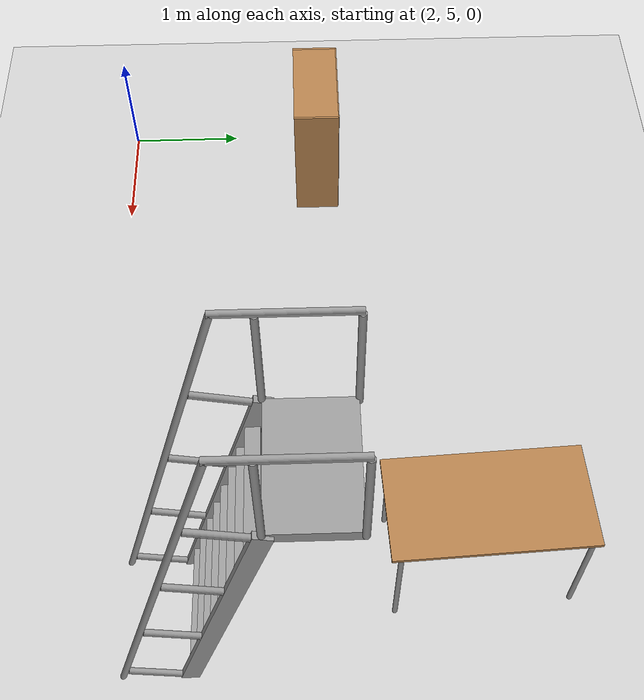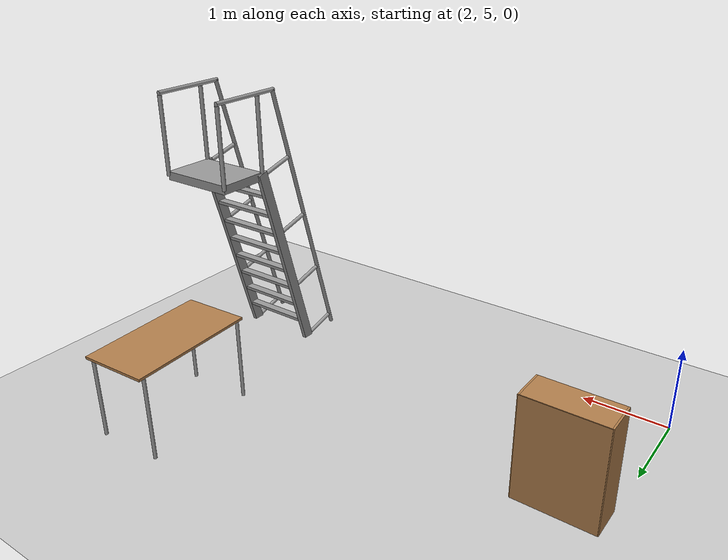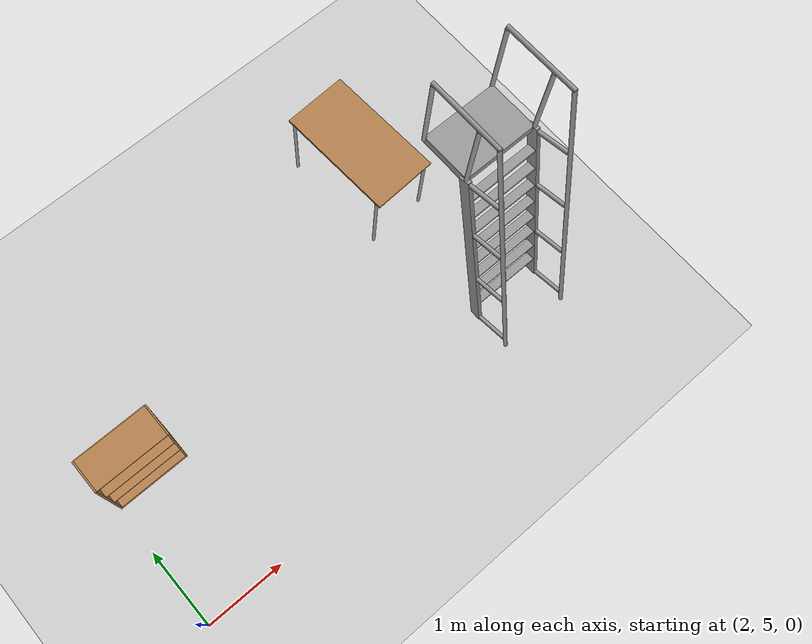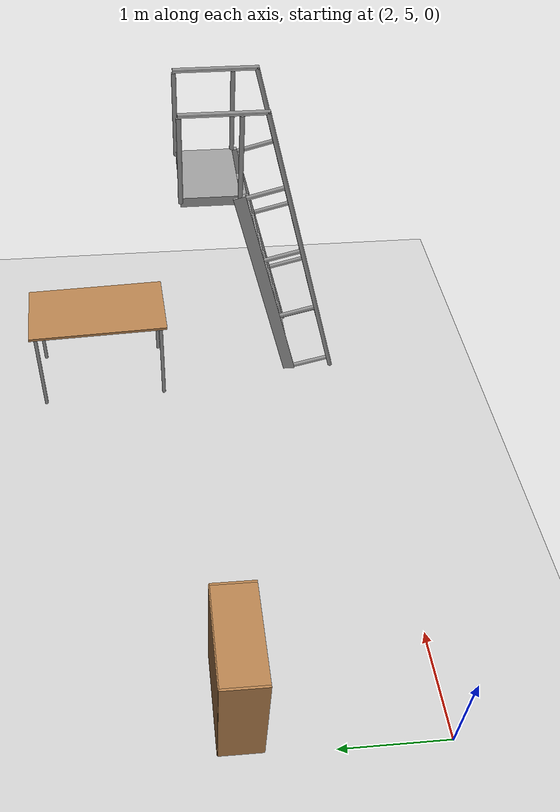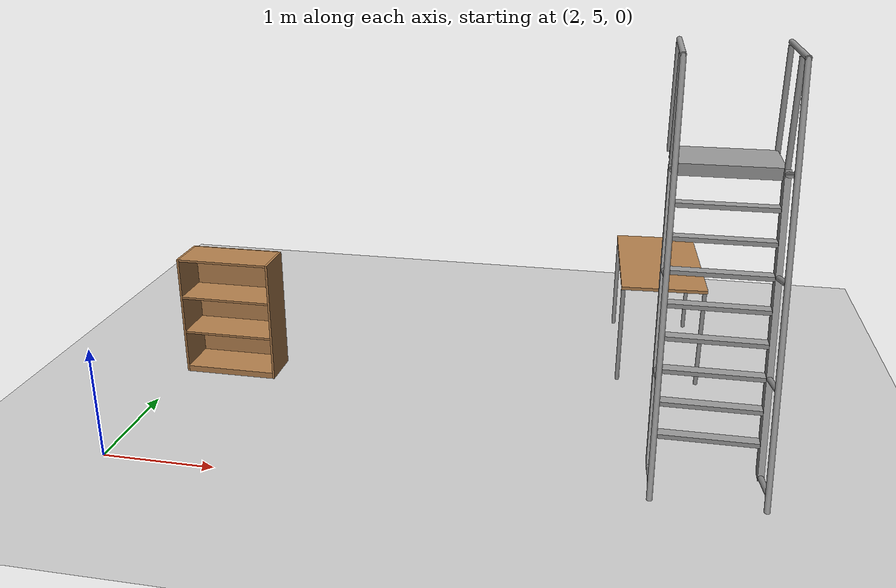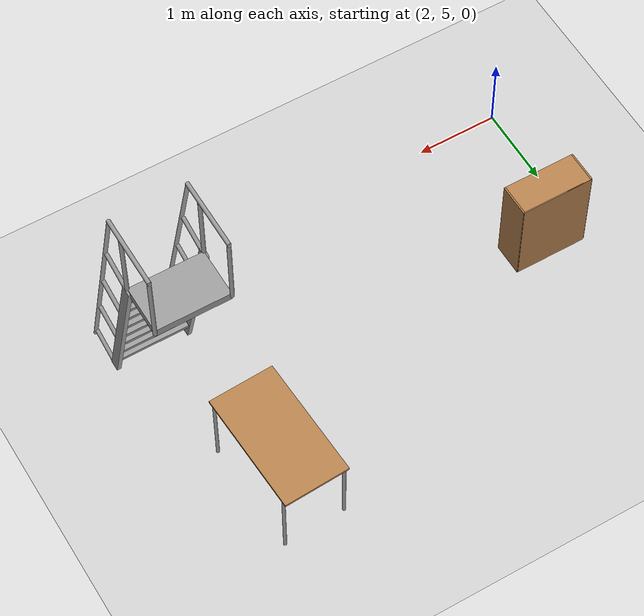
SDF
<sdf version="1.4">
 <world name="default">
  <model name="ground_plane">
   <static>1</static>
   <link name="link">
    <collision name="collision">
     <geometry><plane><normal>0 0 1</normal><size>100 100</size></plane></geometry>
     <surface><friction><ode><mu>100</mu><mu2>50</mu2></ode></friction></surface>
    </collision>
    <visual name="visual">
     <cast_shadows>0</cast_shadows>
     <geometry><plane><normal>0 0 1</normal><size>100 100</size></plane></geometry>
     <material>
      <script><uri>file://media/materials/scripts/gazebo.material</uri><name>Gazebo/Grey</name></script>
     </material>
    </visual>
    <velocity_decay><linear>0</linear><angular>0</angular></velocity_decay>
   </link>
  </model>
  <model name="ladder_75deg_2rails">
   <static>1</static>
   <link name="step0">
    <pose>0 0.0714531 0.266667 0 -0 0</pose>
    <inertial>
     <mass>9.75482</mass>
     <inertia>
      <ixx>0.00957124</ixx>
      <iyy>0.65963</iyy>
      <izz>0.666842</izz>
      <ixy>0</ixy>
      <ixz>0</ixz>
      <iyz>0</iyz>
     </inertia>
    </inertial>
    <collision name="collision"><geometry><box><size>0.9 0.1016 0.0381</size></box></geometry></collision>
    <visual name="visual">
     <geometry><box><size>0.9 0.1016 0.0381</size></box></geometry>
     <material>
      <script><uri>file://media/materials/scripts/gazebo.material</uri><name>Gazebo/Grey</name></script>
     </material>
    </visual>
    <velocity_decay><linear>0</linear><angular>0</angular></velocity_decay>
   </link>
   <link name="step1">
    <pose>0 0.142906 0.533333 0 -0 0</pose>
    <inertial>
     <mass>9.75482</mass>
     <inertia>
      <ixx>0.00957124</ixx>
      <iyy>0.65963</iyy>
      <izz>0.666842</izz>
      <ixy>0</ixy>
      <ixz>0</ixz>
      <iyz>0</iyz>
     </inertia>
    </inertial>
    <collision name="collision"><geometry><box><size>0.9 0.1016 0.0381</size></box></geometry></collision>
    <visual name="visual">
     <geometry><box><size>0.9 0.1016 0.0381</size></box></geometry>
     <material>
      <script><uri>file://media/materials/scripts/gazebo.material</uri><name>Gazebo/Grey</name></script>
     </material>
    </visual>
    <velocity_decay><linear>0</linear><angular>0</angular></velocity_decay>
   </link>
   <link name="step2">
    <pose>0 0.214359 0.8 0 -0 0</pose>
    <inertial>
     <mass>9.75482</mass>
     <inertia>
      <ixx>0.00957124</ixx>
      <iyy>0.65963</iyy>
      <izz>0.666842</izz>
      <ixy>0</ixy>
      <ixz>0</ixz>
      <iyz>0</iyz>
     </inertia>
    </inertial>
    <collision name="collision"><geometry><box><size>0.9 0.1016 0.0381</size></box></geometry></collision>
    <visual name="visual">
     <geometry><box><size>0.9 0.1016 0.0381</size></box></geometry>
     <material>
      <script><uri>file://media/materials/scripts/gazebo.material</uri><name>Gazebo/Grey</name></script>
     </material>
    </visual>
    <velocity_decay><linear>0</linear><angular>0</angular></velocity_decay>
   </link>
   <link name="step3">
    <pose>0 0.285812 1.06667 0 -0 0</pose>
    <inertial>
     <mass>9.75482</mass>
     <inertia>
      <ixx>0.00957124</ixx>
      <iyy>0.65963</iyy>
      <izz>0.666842</izz>
      <ixy>0</ixy>
      <ixz>0</ixz>
      <iyz>0</iyz>
     </inertia>
    </inertial>
    <collision name="collision"><geometry><box><size>0.9 0.1016 0.0381</size></box></geometry></collision>
    <visual name="visual">
     <geometry><box><size>0.9 0.1016 0.0381</size></box></geometry>
     <material>
      <script><uri>file://media/materials/scripts/gazebo.material</uri><name>Gazebo/Grey</name></script>
     </material>
    </visual>
    <velocity_decay><linear>0</linear><angular>0</angular></velocity_decay>
   </link>
   <link name="step4">
    <pose>0 0.357266 1.33333 0 -0 0</pose>
    <inertial>
     <mass>9.75482</mass>
     <inertia>
      <ixx>0.00957124</ixx>
      <iyy>0.65963</iyy>
      <izz>0.666842</izz>
      <ixy>0</ixy>
      <ixz>0</ixz>
      <iyz>0</iyz>
     </inertia>
    </inertial>
    <collision name="collision"><geometry><box><size>0.9 0.1016 0.0381</size></box></geometry></collision>
    <visual name="visual">
     <geometry><box><size>0.9 0.1016 0.0381</size></box></geometry>
     <material>
      <script><uri>file://media/materials/scripts/gazebo.material</uri><name>Gazebo/Grey</name></script>
     </material>
    </visual>
    <velocity_decay><linear>0</linear><angular>0</angular></velocity_decay>
   </link>
   <link name="step5">
    <pose>0 0.428719 1.6 0 -0 0</pose>
    <inertial>
     <mass>9.75482</mass>
     <inertia>
      <ixx>0.00957124</ixx>
      <iyy>0.65963</iyy>
      <izz>0.666842</izz>
      <ixy>0</ixy>
      <ixz>0</ixz>
      <iyz>0</iyz>
     </inertia>
    </inertial>
    <collision name="collision"><geometry><box><size>0.9 0.1016 0.0381</size></box></geometry></collision>
    <visual name="visual">
     <geometry><box><size>0.9 0.1016 0.0381</size></box></geometry>
     <material>
      <script><uri>file://media/materials/scripts/gazebo.material</uri><name>Gazebo/Grey</name></script>
     </material>
    </visual>
    <velocity_decay><linear>0</linear><angular>0</angular></velocity_decay>
   </link>
   <link name="step6">
    <pose>0 0.500172 1.86667 0 -0 0</pose>
    <inertial>
     <mass>9.75482</mass>
     <inertia>
      <ixx>0.00957124</ixx>
      <iyy>0.65963</iyy>
      <izz>0.666842</izz>
      <ixy>0</ixy>
      <ixz>0</ixz>
      <iyz>0</iyz>
     </inertia>
    </inertial>
    <collision name="collision"><geometry><box><size>0.9 0.1016 0.0381</size></box></geometry></collision>
    <visual name="visual">
     <geometry><box><size>0.9 0.1016 0.0381</size></box></geometry>
     <material>
      <script><uri>file://media/materials/scripts/gazebo.material</uri><name>Gazebo/Grey</name></script>
     </material>
    </visual>
    <velocity_decay><linear>0</linear><angular>0</angular></velocity_decay>
   </link>
   <link name="step7">
    <pose>0 0.571625 2.13333 0 -0 0</pose>
    <inertial>
     <mass>9.75482</mass>
     <inertia>
      <ixx>0.00957124</ixx>
      <iyy>0.65963</iyy>
      <izz>0.666842</izz>
      <ixy>0</ixy>
      <ixz>0</ixz>
      <iyz>0</iyz>
     </inertia>
    </inertial>
    <collision name="collision"><geometry><box><size>0.9 0.1016 0.0381</size></box></geometry></collision>
    <visual name="visual">
     <geometry><box><size>0.9 0.1016 0.0381</size></box></geometry>
     <material>
      <script><uri>file://media/materials/scripts/gazebo.material</uri><name>Gazebo/Grey</name></script>
     </material>
    </visual>
    <velocity_decay><linear>0</linear><angular>0</angular></velocity_decay>
   </link>
   <link name="landing">
    <pose>0 0.943078 2.4 0 -0 0</pose>
    <inertial>
     <mass>57.6072</mass>
     <inertia><ixx>1.73518</ixx><iyy>3.89545</iyy><izz>5.6167</izz><ixy>0</ixy><ixz>0</ixz><iyz>0</iyz></inertia>
    </inertial>
    <collision name="collision"><geometry><box><size>0.9 0.6 0.1016</size></box></geometry></collision>
    <visual name="visual">
     <geometry><box><size>0.9 0.6 0.1016</size></box></geometry>
     <material>
      <script><uri>file://media/materials/scripts/gazebo.material</uri><name>Gazebo/Grey</name></script>
     </material>
    </visual>
    <velocity_decay><linear>0</linear><angular>0</angular></velocity_decay>
   </link>
   <link name="left_side_wall">
    <pose>-0.45 0.321539 1.2 1.309 -0 0</pose>
    <collision name="collision"><geometry><box><size>0.0508 2.56466 0.13</size></box></geometry></collision>
    <visual name="visual">
     <geometry><box><size>0.0508 2.56466 0.13</size></box></geometry>
     <material>
      <script><uri>file://media/materials/scripts/gazebo.material</uri><name>Gazebo/Grey</name></script>
     </material>
    </visual>
    <velocity_decay><linear>0</linear><angular>0</angular></velocity_decay>
   </link>
   <link name="right_side_wall">
    <pose>0.45 0.321539 1.2 1.309 -0 0</pose>
    <collision name="collision"><geometry><box><size>0.0508 2.56466 0.13</size></box></geometry></collision>
    <visual name="visual">
     <geometry><box><size>0.0508 2.56466 0.13</size></box></geometry>
     <material>
      <script><uri>file://media/materials/scripts/gazebo.material</uri><name>Gazebo/Grey</name></script>
     </material>
    </visual>
    <velocity_decay><linear>0</linear><angular>0</angular></velocity_decay>
   </link>
   <link name="left_railing_long">
    <pose>-0.45 -0.053461 1.66651 -0.261799 0 0</pose>
    <collision name="collision">
     <geometry><cylinder><radius>0.02413</radius><length>3.51529</length></cylinder></geometry>
    </collision>
    <visual name="visual">
     <geometry><cylinder><radius>0.02413</radius><length>3.51529</length></cylinder></geometry>
     <material>
      <script><uri>file://media/materials/scripts/gazebo.material</uri><name>Gazebo/Grey</name></script>
     </material>
    </visual>
    <velocity_decay><linear>0</linear><angular>0</angular></velocity_decay>
   </link>
   <link name="left_railing_upright0">
    <pose>-0.45 -0.210089 0.0562931 1.309 -0 0</pose>
    <collision name="collision">
     <geometry><cylinder><radius>0.02413</radius><length>0.482963</length></cylinder></geometry>
    </collision>
    <visual name="visual">
     <geometry><cylinder><radius>0.02413</radius><length>0.482963</length></cylinder></geometry>
     <material>
      <script><uri>file://media/materials/scripts/gazebo.material</uri><name>Gazebo/Grey</name></script>
     </material>
    </visual>
    <velocity_decay><linear>0</linear><angular>0</angular></velocity_decay>
   </link>
   <link name="left_railing_upright1">
    <pose>-0.45 0.00427049 0.856293 1.309 -0 0</pose>
    <collision name="collision">
     <geometry><cylinder><radius>0.02413</radius><length>0.482963</length></cylinder></geometry>
    </collision>
    <visual name="visual">
     <geometry><cylinder><radius>0.02413</radius><length>0.482963</length></cylinder></geometry>
     <material>
      <script><uri>file://media/materials/scripts/gazebo.material</uri><name>Gazebo/Grey</name></script>
     </material>
    </visual>
    <velocity_decay><linear>0</linear><angular>0</angular></velocity_decay>
   </link>
   <link name="left_railing_upright2">
    <pose>-0.45 0.21863 1.65629 1.309 -0 0</pose>
    <collision name="collision">
     <geometry><cylinder><radius>0.02413</radius><length>0.482963</length></cylinder></geometry>
    </collision>
    <visual name="visual">
     <geometry><cylinder><radius>0.02413</radius><length>0.482963</length></cylinder></geometry>
     <material>
      <script><uri>file://media/materials/scripts/gazebo.material</uri><name>Gazebo/Grey</name></script>
     </material>
    </visual>
    <velocity_decay><linear>0</linear><angular>0</angular></velocity_decay>
   </link>
   <link name="left_railing_upright3">
    <pose>-0.45 0.432989 2.45629 1.309 -0 0</pose>
    <collision name="collision">
     <geometry><cylinder><radius>0.02413</radius><length>0.482963</length></cylinder></geometry>
    </collision>
    <visual name="visual">
     <geometry><cylinder><radius>0.02413</radius><length>0.482963</length></cylinder></geometry>
     <material>
      <script><uri>file://media/materials/scripts/gazebo.material</uri><name>Gazebo/Grey</name></script>
     </material>
    </visual>
    <velocity_decay><linear>0</linear><angular>0</angular></velocity_decay>
   </link>
   <link name="left_railing_landing_top">
    <pose>-0.45 0.818078 3.35714 1.5708 -0 0</pose>
    <collision name="collision">
     <geometry><cylinder><radius>0.02413</radius><length>0.87413</length></cylinder></geometry>
    </collision>
    <visual name="visual">
     <geometry><cylinder><radius>0.02413</radius><length>0.87413</length></cylinder></geometry>
     <material>
      <script><uri>file://media/materials/scripts/gazebo.material</uri><name>Gazebo/Grey</name></script>
     </material>
    </visual>
    <velocity_decay><linear>0</linear><angular>0</angular></velocity_decay>
   </link>
   <link name="left_railing_landing_upright_0">
    <pose>-0.45 0.643078 2.86651 0 -0 0</pose>
    <collision name="collision">
     <geometry><cylinder><radius>0.02413</radius><length>0.933013</length></cylinder></geometry>
    </collision>
    <visual name="visual">
     <geometry><cylinder><radius>0.02413</radius><length>0.933013</length></cylinder></geometry>
     <material>
      <script><uri>file://media/materials/scripts/gazebo.material</uri><name>Gazebo/Grey</name></script>
     </material>
    </visual>
    <velocity_decay><linear>0</linear><angular>0</angular></velocity_decay>
   </link>
   <link name="left_railing_landing_upright_1">
    <pose>-0.45 1.24308 2.86651 0 -0 0</pose>
    <collision name="collision">
     <geometry><cylinder><radius>0.02413</radius><length>0.933013</length></cylinder></geometry>
    </collision>
    <visual name="visual">
     <geometry><cylinder><radius>0.02413</radius><length>0.933013</length></cylinder></geometry>
     <material>
      <script><uri>file://media/materials/scripts/gazebo.material</uri><name>Gazebo/Grey</name></script>
     </material>
    </visual>
    <velocity_decay><linear>0</linear><angular>0</angular></velocity_decay>
   </link>
   <link name="right_railing_long">
    <pose>0.45 -0.053461 1.66651 -0.261799 0 0</pose>
    <collision name="collision">
     <geometry><cylinder><radius>0.02413</radius><length>3.51529</length></cylinder></geometry>
    </collision>
    <visual name="visual">
     <geometry><cylinder><radius>0.02413</radius><length>3.51529</length></cylinder></geometry>
     <material>
      <script><uri>file://media/materials/scripts/gazebo.material</uri><name>Gazebo/Grey</name></script>
     </material>
    </visual>
    <velocity_decay><linear>0</linear><angular>0</angular></velocity_decay>
   </link>
   <link name="right_railing_upright0">
    <pose>0.45 -0.210089 0.0562931 1.309 -0 0</pose>
    <collision name="collision">
     <geometry><cylinder><radius>0.02413</radius><length>0.482963</length></cylinder></geometry>
    </collision>
    <visual name="visual">
     <geometry><cylinder><radius>0.02413</radius><length>0.482963</length></cylinder></geometry>
     <material>
      <script><uri>file://media/materials/scripts/gazebo.material</uri><name>Gazebo/Grey</name></script>
     </material>
    </visual>
    <velocity_decay><linear>0</linear><angular>0</angular></velocity_decay>
   </link>
   <link name="right_railing_upright1">
    <pose>0.45 0.00427049 0.856293 1.309 -0 0</pose>
    <collision name="collision">
     <geometry><cylinder><radius>0.02413</radius><length>0.482963</length></cylinder></geometry>
    </collision>
    <visual name="visual">
     <geometry><cylinder><radius>0.02413</radius><length>0.482963</length></cylinder></geometry>
     <material>
      <script><uri>file://media/materials/scripts/gazebo.material</uri><name>Gazebo/Grey</name></script>
     </material>
    </visual>
    <velocity_decay><linear>0</linear><angular>0</angular></velocity_decay>
   </link>
   <link name="right_railing_upright2">
    <pose>0.45 0.21863 1.65629 1.309 -0 0</pose>
    <collision name="collision">
     <geometry><cylinder><radius>0.02413</radius><length>0.482963</length></cylinder></geometry>
    </collision>
    <visual name="visual">
     <geometry><cylinder><radius>0.02413</radius><length>0.482963</length></cylinder></geometry>
     <material>
      <script><uri>file://media/materials/scripts/gazebo.material</uri><name>Gazebo/Grey</name></script>
     </material>
    </visual>
    <velocity_decay><linear>0</linear><angular>0</angular></velocity_decay>
   </link>
   <link name="right_railing_upright3">
    <pose>0.45 0.432989 2.45629 1.309 -0 0</pose>
    <collision name="collision">
     <geometry><cylinder><radius>0.02413</radius><length>0.482963</length></cylinder></geometry>
    </collision>
    <visual name="visual">
     <geometry><cylinder><radius>0.02413</radius><length>0.482963</length></cylinder></geometry>
     <material>
      <script><uri>file://media/materials/scripts/gazebo.material</uri><name>Gazebo/Grey</name></script>
     </material>
    </visual>
    <velocity_decay><linear>0</linear><angular>0</angular></velocity_decay>
   </link>
   <link name="right_railing_landing_top">
    <pose>0.45 0.818078 3.35714 1.5708 -0 0</pose>
    <collision name="collision">
     <geometry><cylinder><radius>0.02413</radius><length>0.87413</length></cylinder></geometry>
    </collision>
    <visual name="visual">
     <geometry><cylinder><radius>0.02413</radius><length>0.87413</length></cylinder></geometry>
     <material>
      <script><uri>file://media/materials/scripts/gazebo.material</uri><name>Gazebo/Grey</name></script>
     </material>
    </visual>
    <velocity_decay><linear>0</linear><angular>0</angular></velocity_decay>
   </link>
   <link name="right_railing_landing_upright_0">
    <pose>0.45 0.643078 2.86651 0 -0 0</pose>
    <collision name="collision">
     <geometry><cylinder><radius>0.02413</radius><length>0.933013</length></cylinder></geometry>
    </collision>
    <visual name="visual">
     <geometry><cylinder><radius>0.02413</radius><length>0.933013</length></cylinder></geometry>
     <material>
      <script><uri>file://media/materials/scripts/gazebo.material</uri><name>Gazebo/Grey</name></script>
     </material>
    </visual>
    <velocity_decay><linear>0</linear><angular>0</angular></velocity_decay>
   </link>
   <link name="right_railing_landing_upright_1">
    <pose>0.45 1.24308 2.86651 0 -0 0</pose>
    <collision name="collision">
     <geometry><cylinder><radius>0.02413</radius><length>0.933013</length></cylinder></geometry>
    </collision>
    <visual name="visual">
     <geometry><cylinder><radius>0.02413</radius><length>0.933013</length></cylinder></geometry>
     <material>
      <script><uri>file://media/materials/scripts/gazebo.material</uri><name>Gazebo/Grey</name></script>
     </material>
    </visual>
    <velocity_decay><linear>0</linear><angular>0</angular></velocity_decay>
   </link>
   <pose>7.03641 5.75093 0 0 -0 0</pose>
  </model>
  <model name="table_0">
   <static>1</static>
   <link name="link">
    <collision name="surface">
     <pose>0 0 1 0 -0 0</pose>
     <geometry><box><size>1.5 0.8 0.03</size></box></geometry>
     <surface><friction><ode><mu>0.6</mu><mu2>0.6</mu2></ode></friction></surface>
    </collision>
    <visual name="visual1">
     <pose>0 0 1 0 -0 0</pose>
     <geometry><box><size>1.5 0.8 0.03</size></box></geometry>
     <material>
      <script><uri>file://media/materials/scripts/gazebo.material</uri><name>Gazebo/Wood</name></script>
     </material>
    </visual>
    <collision name="front_left_leg">
     <pose>0.68 0.38 0.5 0 -0 0</pose>
     <geometry><cylinder><radius>0.02</radius><length>1</length></cylinder></geometry>
    </collision>
    <visual name="front_left_leg">
     <pose>0.68 0.38 0.5 0 -0 0</pose>
     <geometry><cylinder><radius>0.02</radius><length>1</length></cylinder></geometry>
     <material>
      <script><uri>file://media/materials/scripts/gazebo.material</uri><name>Gazebo/Grey</name></script>
     </material>
    </visual>
    <collision name="front_right_leg">
     <pose>0.68 -0.38 0.5 0 -0 0</pose>
     <geometry><cylinder><radius>0.02</radius><length>1</length></cylinder></geometry>
    </collision>
    <visual name="front_right_leg">
     <pose>0.68 -0.38 0.5 0 -0 0</pose>
     <geometry><cylinder><radius>0.02</radius><length>1</length></cylinder></geometry>
     <material>
      <script><uri>file://media/materials/scripts/gazebo.material</uri><name>Gazebo/Grey</name></script>
     </material>
    </visual>
    <collision name="back_right_leg">
     <pose>-0.68 -0.38 0.5 0 -0 0</pose>
     <geometry><cylinder><radius>0.02</radius><length>1</length></cylinder></geometry>
    </collision>
    <visual name="back_right_leg">
     <pose>-0.68 -0.38 0.5 0 -0 0</pose>
     <geometry><cylinder><radius>0.02</radius><length>1</length></cylinder></geometry>
     <material>
      <script><uri>file://media/materials/scripts/gazebo.material</uri><name>Gazebo/Grey</name></script>
     </material>
    </visual>
    <collision name="back_left_leg">
     <pose>-0.68 0.38 0.5 0 -0 0</pose>
     <geometry><cylinder><radius>0.02</radius><length>1</length></cylinder></geometry>
    </collision>
    <visual name="back_left_leg">
     <pose>-0.68 0.38 0.5 0 -0 0</pose>
     <geometry><cylinder><radius>0.02</radius><length>1</length></cylinder></geometry>
     <material>
      <script><uri>file://media/materials/scripts/gazebo.material</uri><name>Gazebo/Grey</name></script>
     </material>
    </visual>
    <velocity_decay><linear>0</linear><angular>0</angular></velocity_decay>
   </link>
   <pose>6.62907 7.9603 0 0 0 -1.52</pose>
  </model>
  <model name="bookshelf">
   <static>1</static>
   <link name="link">
    <inertial><mass>1</mass></inertial>
    <collision name="back">
     <pose>0 0.005 0.6 0 -0 0</pose>
     <geometry><box><size>0.9 0.01 1.2</size></box></geometry>
    </collision>
    <visual name="visual1">
     <pose>0 0.005 0.6 0 -0 0</pose>
     <geometry><box><size>0.9 0.01 1.2</size></box></geometry>
     <material>
      <script><uri>file://media/materials/scripts/gazebo.material</uri><name>Gazebo/Wood</name></script>
     </material>
    </visual>
    <collision name="left_side">
     <pose>0.45 -0.195 0.6 0 -0 0</pose>
     <geometry><box><size>0.02 0.4 1.2</size></box></geometry>
    </collision>
    <visual name="visual2">
     <pose>0.45 -0.195 0.6 0 -0 0</pose>
     <geometry><box><size>0.02 0.4 1.2</size></box></geometry>
     <material>
      <script><uri>file://media/materials/scripts/gazebo.material</uri><name>Gazebo/Wood</name></script>
     </material>
    </visual>
    <collision name="right_side">
     <pose>-0.45 -0.195 0.6 0 -0 0</pose>
     <geometry><box><size>0.02 0.4 1.2</size></box></geometry>
    </collision>
    <visual name="visual3">
     <pose>-0.45 -0.195 0.6 0 -0 0</pose>
     <geometry><box><size>0.02 0.4 1.2</size></box></geometry>
     <material>
      <script><uri>file://media/materials/scripts/gazebo.material</uri><name>Gazebo/Wood</name></script>
     </material>
    </visual>
    <collision name="bottom">
     <pose>0 -0.195 0.03 0 -0 0</pose>
     <geometry><box><size>0.88 0.4 0.06</size></box></geometry>
    </collision>
    <visual name="visual4">
     <pose>0 -0.195 0.03 0 -0 0</pose>
     <geometry><box><size>0.88 0.4 0.06</size></box></geometry>
     <material>
      <script><uri>file://media/materials/scripts/gazebo.material</uri><name>Gazebo/Wood</name></script>
     </material>
    </visual>
    <collision name="top">
     <pose>0 -0.195 1.19 0 -0 0</pose>
     <geometry><box><size>0.88 0.4 0.02</size></box></geometry>
    </collision>
    <visual name="visual5">
     <pose>0 -0.195 1.19 0 -0 0</pose>
     <geometry><box><size>0.88 0.4 0.02</size></box></geometry>
     <material>
      <script><uri>file://media/materials/scripts/gazebo.material</uri><name>Gazebo/Wood</name></script>
     </material>
    </visual>
    <collision name="low_shelf">
     <pose>0 -0.195 0.43 0 -0 0</pose>
     <geometry><box><size>0.88 0.4 0.02</size></box></geometry>
    </collision>
    <visual name="visual6">
     <pose>0 -0.195 0.43 0 -0 0</pose>
     <geometry><box><size>0.88 0.4 0.02</size></box></geometry>
     <material>
      <script><uri>file://media/materials/scripts/gazebo.material</uri><name>Gazebo/Wood</name></script>
     </material>
    </visual>
    <collision name="high_shelf">
     <pose>0 -0.195 0.8 0 -0 0</pose>
     <geometry><box><size>0.88 0.4 0.02</size></box></geometry>
    </collision>
    <visual name="visual7">
     <pose>0 -0.195 0.8 0 -0 0</pose>
     <geometry><box><size>0.88 0.4 0.02</size></box></geometry>
     <material>
      <script><uri>file://media/materials/scripts/gazebo.material</uri><name>Gazebo/Wood</name></script>
     </material>
    </visual>
    <velocity_decay><linear>0</linear><angular>0</angular></velocity_decay>
   </link>
   <pose>2.48309 7 0 0 -0 0</pose>
  </model>
 </world>
</sdf>
